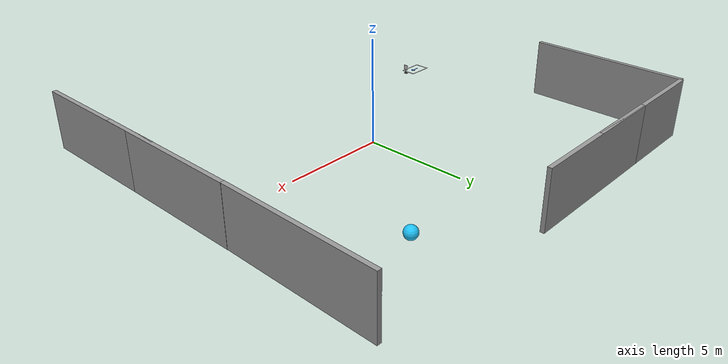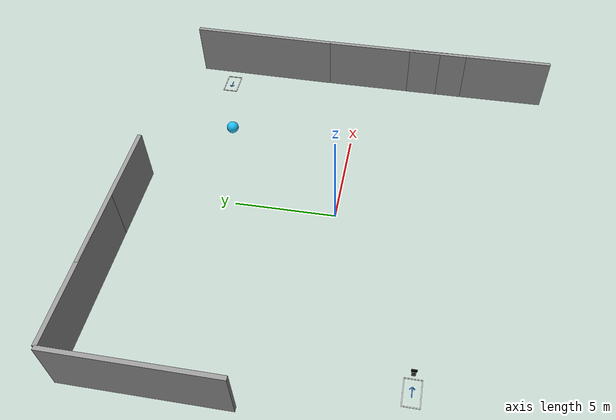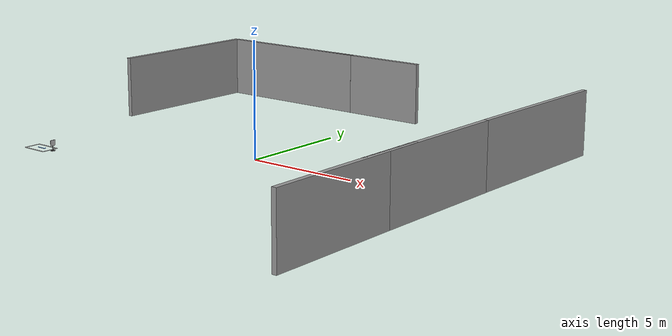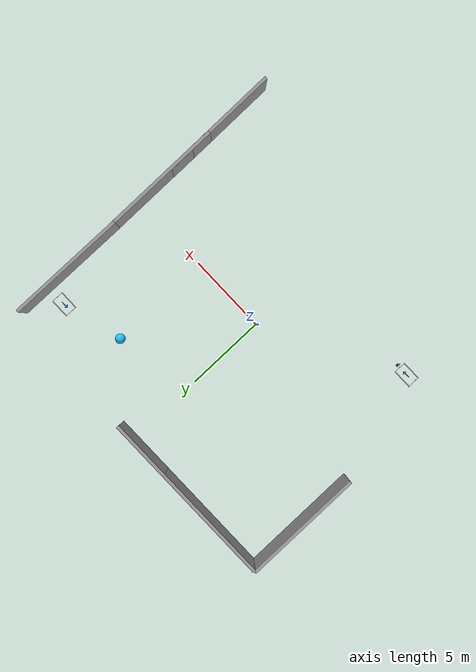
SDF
<sdf version="1.7">
 <world name="autofactory">
  <light name="sun" type="directional">
   <pose>0 0 10 0 -0 0</pose>
   <diffuse>0.8 0.8 0.8 1</diffuse>
   <specular>0.2 0.2 0.2 1</specular>
   <attenuation>
    <range>1000</range>
    <constant>0.9</constant>
    <linear>0.01</linear>
    <quadratic>0.001</quadratic>
   </attenuation>
   <direction>-0.5 0.1 -0.9</direction>
   <spot><inner_angle>0</inner_angle><outer_angle>0</outer_angle><falloff>0</falloff></spot>
  </light>
  <gravity>0 0 -9.8</gravity>
  <magnetic_field>6e-06 2.3e-05 -4.2e-05</magnetic_field>
  <atmosphere type="adiabatic"/>
  <physics name="default_physics" default="0" type="ode">
   <max_step_size>0.001</max_step_size>
   <real_time_factor>1</real_time_factor>
   <real_time_update_rate>1000</real_time_update_rate>
  </physics>
  <scene><ambient>0.4 0.4 0.4 1</ambient><background>0.7 0.7 0.7 1</background><shadows>1</shadows></scene>
  <spherical_coordinates>
   <surface_model>EARTH_WGS84</surface_model>
   <latitude_deg>0</latitude_deg>
   <longitude_deg>0</longitude_deg>
   <elevation>0</elevation>
   <heading_deg>0</heading_deg>
  </spherical_coordinates>
  <model name="grey_wall">
   <static>1</static>
   <link name="link">
    <pose>0 0 1.4 0 -0 0</pose>
    <collision name="collision"><geometry><box><size>7.5 0.2 2.8</size></box></geometry></collision>
    <visual name="visual">
     <cast_shadows>0</cast_shadows>
     <geometry><box><size>7.5 0.2 2.8</size></box></geometry>
     <material>
      <script>
       <uri>model://grey_wall/materials/scripts</uri>
       <uri>model://grey_wall/materials/textures</uri>
       <name>vrc/grey_wall</name>
      </script>
     </material>
    </visual>
   </link>
   <pose>-6.34942 9.78138 0 0 -0 0</pose>
  </model>
  <model name="grey_wall_clone">
   <static>1</static>
   <link name="link">
    <pose>0 0 1.4 0 -0 0</pose>
    <collision name="collision"><geometry><box><size>7.5 0.2 2.8</size></box></geometry></collision>
    <visual name="visual">
     <cast_shadows>0</cast_shadows>
     <geometry><box><size>7.5 0.2 2.8</size></box></geometry>
     <material>
      <script>
       <uri>model://grey_wall/materials/scripts</uri>
       <uri>model://grey_wall/materials/textures</uri>
       <name>vrc/grey_wall</name>
      </script>
     </material>
    </visual>
   </link>
   <pose>-2.50623 9.78241 0 0 -0 0</pose>
  </model>
  <light name="user_spot_light_0_clone_clone" type="spot">
   <pose>-4.22523 -4.87712 7.17268 0 -0 0</pose>
   <diffuse>0.5 0.5 0.5 1</diffuse>
   <specular>0.1 0.1 0.1 1</specular>
   <direction>0 0 -1</direction>
   <attenuation>
    <range>20</range>
    <constant>0.5</constant>
    <linear>0.01</linear>
    <quadratic>0.001</quadratic>
   </attenuation>
   <cast_shadows>0</cast_shadows>
   <spot><inner_angle>0.6</inner_angle><outer_angle>1</outer_angle><falloff>1</falloff></spot>
  </light>
  <light name="user_spot_light_0_clone_clone_clone" type="spot">
   <pose>0.543716 1.56833 7.17268 0 -0 0</pose>
   <diffuse>0.5 0.5 0.5 1</diffuse>
   <specular>0.1 0.1 0.1 1</specular>
   <direction>0 0 -1</direction>
   <attenuation>
    <range>20</range>
    <constant>0.5</constant>
    <linear>0.01</linear>
    <quadratic>0.001</quadratic>
   </attenuation>
   <cast_shadows>0</cast_shadows>
   <spot><inner_angle>0.6</inner_angle><outer_angle>1</outer_angle><falloff>1</falloff></spot>
  </light>
  <light name="user_spot_light_0_clone_clone_clone_clone_clone" type="spot">
   <pose>4.47445 -6.80903 7.17268 0 -0 0</pose>
   <diffuse>0.5 0.5 0.5 1</diffuse>
   <specular>0.1 0.1 0.1 1</specular>
   <direction>0 0 -1</direction>
   <attenuation>
    <range>20</range>
    <constant>0.5</constant>
    <linear>0.01</linear>
    <quadratic>0.001</quadratic>
   </attenuation>
   <cast_shadows>0</cast_shadows>
   <spot><inner_angle>0.6</inner_angle><outer_angle>1</outer_angle><falloff>1</falloff></spot>
  </light>
  <audio><device>default</device></audio>
  <model name="grey_wall_0">
   <static>1</static>
   <link name="link">
    <pose>0 0 1.4 0 -0 0</pose>
    <collision name="collision"><geometry><box><size>7.5 0.2 2.8</size></box></geometry></collision>
    <visual name="visual">
     <cast_shadows>0</cast_shadows>
     <geometry><box><size>7.5 0.2 2.8</size></box></geometry>
     <material>
      <script>
       <uri>model://grey_wall/materials/scripts</uri>
       <uri>model://grey_wall/materials/textures</uri>
       <name>vrc/grey_wall</name>
      </script>
     </material>
    </visual>
   </link>
   <pose>9.89069 5.66584 0 0 -0 1.55796</pose>
  </model>
  <model name="grey_wall_1">
   <static>1</static>
   <link name="link">
    <pose>0 0 1.4 0 -0 0</pose>
    <collision name="collision"><geometry><box><size>7.5 0.2 2.8</size></box></geometry></collision>
    <visual name="visual">
     <cast_shadows>0</cast_shadows>
     <geometry><box><size>7.5 0.2 2.8</size></box></geometry>
     <material>
      <script>
       <uri>model://grey_wall/materials/scripts</uri>
       <uri>model://grey_wall/materials/textures</uri>
       <name>vrc/grey_wall</name>
      </script>
     </material>
    </visual>
   </link>
   <pose>9.84716 -1.79503 0 0 -0 1.56945</pose>
  </model>
  <model name="grey_wall_2">
   <static>1</static>
   <link name="link">
    <pose>0 0 1.4 0 -0 0</pose>
    <collision name="collision"><geometry><box><size>7.5 0.2 2.8</size></box></geometry></collision>
    <visual name="visual">
     <cast_shadows>0</cast_shadows>
     <geometry><box><size>7.5 0.2 2.8</size></box></geometry>
     <material>
      <script>
       <uri>model://grey_wall/materials/scripts</uri>
       <uri>model://grey_wall/materials/textures</uri>
       <name>vrc/grey_wall</name>
      </script>
     </material>
    </visual>
   </link>
   <pose>9.85287 -6.25331 0 0 -0 1.57502</pose>
  </model>
  <model name="grey_wall_3">
   <static>1</static>
   <link name="link">
    <pose>0 0 1.4 0 -0 0</pose>
    <collision name="collision"><geometry><box><size>7.5 0.2 2.8</size></box></geometry></collision>
    <visual name="visual">
     <cast_shadows>0</cast_shadows>
     <geometry><box><size>7.5 0.2 2.8</size></box></geometry>
     <material>
      <script>
       <uri>model://grey_wall/materials/scripts</uri>
       <uri>model://grey_wall/materials/textures</uri>
       <name>vrc/grey_wall</name>
      </script>
     </material>
    </visual>
   </link>
   <pose>-10.1609 6.05603 0 0 -0 1.56911</pose>
  </model>
  <model name="aws_robomaker_residential_Ball_01">
   <link name="link">
    <inertial>
     <mass>0.12</mass>
     <inertia>
      <ixx>0.030752</ixx>
      <ixy>0</ixy>
      <ixz>0</ixz>
      <iyy>0.030752</iyy>
      <iyz>0</iyz>
      <izz>0.030752</izz>
     </inertia>
    </inertial>
    <collision name="collision">
     <geometry><sphere><radius>0.31</radius></sphere></geometry>
     <surface>
      <friction><ode><mu>0.85</mu><mu2>0.85</mu2></ode></friction>
      <contact><ode><kd>8500</kd><max_vel>5.1</max_vel></ode></contact>
     </surface>
    </collision>
    <visual name="visual">
     <geometry><sphere><radius>0.31</radius></sphere></geometry>
     <material><diffuse>0.12 0.76 0.97 1</diffuse><ambient>0.03 0.21 0.27 1</ambient></material>
     <meta><layer>1</layer></meta>
    </visual>
   </link>
   <pose>4.92485 6.43788 0.31 0 -0 0</pose>
  </model>
  <model name="autofactory_parking_slot">
   <static>1</static>
   <pose>-8.37262 -4.47393 0 0 -0 0</pose>
   <link name="parking_slot_link">
    <visual name="left_boundary_visual">
     <pose>0 0.375 0.0075 0 -0 0</pose>
     <geometry><box><size>1.2 0.04 0.015</size></box></geometry>
     <material><ambient>1 1 1 1</ambient><diffuse>1 1 1 1</diffuse><specular>0.05 0.05 0.05 1</specular></material>
     <cast_shadows>0</cast_shadows>
    </visual>
    <visual name="right_boundary_visual">
     <pose>0 -0.375 0.0075 0 -0 0</pose>
     <geometry><box><size>1.2 0.04 0.015</size></box></geometry>
     <material><ambient>1 1 1 1</ambient><diffuse>1 1 1 1</diffuse><specular>0.05 0.05 0.05 1</specular></material>
     <cast_shadows>0</cast_shadows>
    </visual>
    <visual name="entry_boundary_visual">
     <pose>-0.6 0 0.0075 0 -0 0</pose>
     <geometry><box><size>0.04 0.79 0.015</size></box></geometry>
     <material><ambient>1 1 1 1</ambient><diffuse>1 1 1 1</diffuse><specular>0.05 0.05 0.05 1</specular></material>
     <cast_shadows>0</cast_shadows>
    </visual>
    <visual name="rear_boundary_visual">
     <pose>0.6 0 0.0075 0 -0 0</pose>
     <geometry><box><size>0.04 0.79 0.015</size></box></geometry>
     <material><ambient>1 1 1 1</ambient><diffuse>1 1 1 1</diffuse><specular>0.05 0.05 0.05 1</specular></material>
     <cast_shadows>0</cast_shadows>
    </visual>
    <visual name="direction_arrow_shaft_visual">
     <pose>0 0 0.0105 0 -0 0</pose>
     <geometry><box><size>0.4 0.035 0.007</size></box></geometry>
     <material><ambient>0.1 0.5 1 1</ambient><diffuse>0.1 0.5 1 1</diffuse></material>
     <cast_shadows>0</cast_shadows>
    </visual>
    <visual name="direction_arrow_head_upper_visual">
     <pose>0.2 0.055 0.0105 0 0 -0.785398</pose>
     <geometry><box><size>0.16 0.035 0.007</size></box></geometry>
     <material><ambient>0.1 0.5 1 1</ambient><diffuse>0.1 0.5 1 1</diffuse></material>
     <cast_shadows>0</cast_shadows>
    </visual>
    <visual name="direction_arrow_head_lower_visual">
     <pose>0.2 -0.055 0.0105 0 -0 0.785398</pose>
     <geometry><box><size>0.16 0.035 0.007</size></box></geometry>
     <material><ambient>0.1 0.5 1 1</ambient><diffuse>0.1 0.5 1 1</diffuse></material>
     <cast_shadows>0</cast_shadows>
    </visual>
   </link>
  </model>
  <model name="aruco_marker_0">
   <static>1</static>
   <link name="marker_link">
    <visual name="base_visual">
     <pose>0 0 0.01 0 -0 0</pose>
     <geometry><box><size>0.18 0.12 0.02</size></box></geometry>
     <material><ambient>0.15 0.15 0.15 1</ambient><diffuse>0.15 0.15 0.15 1</diffuse></material>
    </visual>
    <collision name="base_collision">
     <pose>0 0 0.01 0 -0 0</pose>
     <geometry><box><size>0.18 0.12 0.02</size></box></geometry>
    </collision>
    <visual name="pole_visual">
     <pose>0 0 0.12 0 -0 0</pose>
     <geometry><cylinder><radius>0.015</radius><length>0.22</length></cylinder></geometry>
     <material><ambient>0.2 0.2 0.2 1</ambient><diffuse>0.2 0.2 0.2 1</diffuse></material>
    </visual>
    <collision name="pole_collision">
     <pose>0 0 0.12 0 -0 0</pose>
     <geometry><cylinder><radius>0.015</radius><length>0.22</length></cylinder></geometry>
    </collision>
    <visual name="marker_backing_visual">
     <pose>0 0 0.35 0 -0 0</pose>
     <geometry><box><size>0.25 0.01 0.25</size></box></geometry>
     <material><ambient>0.02 0.02 0.02 1</ambient><diffuse>0.02 0.02 0.02 1</diffuse></material>
    </visual>
    <collision name="marker_backing_collision">
     <pose>0 0 0.35 0 -0 0</pose>
     <geometry><box><size>0.25 0.01 0.25</size></box></geometry>
    </collision>
    <visual name="aruco_marker_visual">
     <pose>0 -0.006 0.35 1.5708 -0 0</pose>
     <geometry><plane><normal>0 0 1</normal><size>0.24 0.24</size></plane></geometry>
     <material>
      <script>
       <uri>model://aruco_marker_0/materials/scripts</uri>
       <uri>model://aruco_marker_0/materials/textures</uri>
       <name>AutoFactory/ArucoMarker0</name>
      </script>
     </material>
     <cast_shadows>0</cast_shadows>
    </visual>
   </link>
   <pose>-7.57262 -4.47393 0 0 -0 1.5708</pose>
  </model>
  <model name="autofactory_parking_slot_0">
   <static>1</static>
   <pose>8.738 7.48949 0 0 -0 3.13578</pose>
   <link name="parking_slot_link">
    <visual name="left_boundary_visual">
     <pose>0 0.375 0.0075 0 -0 0</pose>
     <geometry><box><size>1.2 0.04 0.015</size></box></geometry>
     <material><ambient>1 1 1 1</ambient><diffuse>1 1 1 1</diffuse><specular>0.05 0.05 0.05 1</specular></material>
     <cast_shadows>0</cast_shadows>
    </visual>
    <visual name="right_boundary_visual">
     <pose>0 -0.375 0.0075 0 -0 0</pose>
     <geometry><box><size>1.2 0.04 0.015</size></box></geometry>
     <material><ambient>1 1 1 1</ambient><diffuse>1 1 1 1</diffuse><specular>0.05 0.05 0.05 1</specular></material>
     <cast_shadows>0</cast_shadows>
    </visual>
    <visual name="entry_boundary_visual">
     <pose>-0.6 0 0.0075 0 -0 0</pose>
     <geometry><box><size>0.04 0.79 0.015</size></box></geometry>
     <material><ambient>1 1 1 1</ambient><diffuse>1 1 1 1</diffuse><specular>0.05 0.05 0.05 1</specular></material>
     <cast_shadows>0</cast_shadows>
    </visual>
    <visual name="rear_boundary_visual">
     <pose>0.6 0 0.0075 0 -0 0</pose>
     <geometry><box><size>0.04 0.79 0.015</size></box></geometry>
     <material><ambient>1 1 1 1</ambient><diffuse>1 1 1 1</diffuse><specular>0.05 0.05 0.05 1</specular></material>
     <cast_shadows>0</cast_shadows>
    </visual>
    <visual name="direction_arrow_shaft_visual">
     <pose>0 0 0.0105 0 -0 0</pose>
     <geometry><box><size>0.4 0.035 0.007</size></box></geometry>
     <material><ambient>0.1 0.5 1 1</ambient><diffuse>0.1 0.5 1 1</diffuse></material>
     <cast_shadows>0</cast_shadows>
    </visual>
    <visual name="direction_arrow_head_upper_visual">
     <pose>0.2 0.055 0.0105 0 0 -0.785398</pose>
     <geometry><box><size>0.16 0.035 0.007</size></box></geometry>
     <material><ambient>0.1 0.5 1 1</ambient><diffuse>0.1 0.5 1 1</diffuse></material>
     <cast_shadows>0</cast_shadows>
    </visual>
    <visual name="direction_arrow_head_lower_visual">
     <pose>0.2 -0.055 0.0105 0 -0 0.785398</pose>
     <geometry><box><size>0.16 0.035 0.007</size></box></geometry>
     <material><ambient>0.1 0.5 1 1</ambient><diffuse>0.1 0.5 1 1</diffuse></material>
     <cast_shadows>0</cast_shadows>
    </visual>
   </link>
  </model>
 </world>
</sdf>
